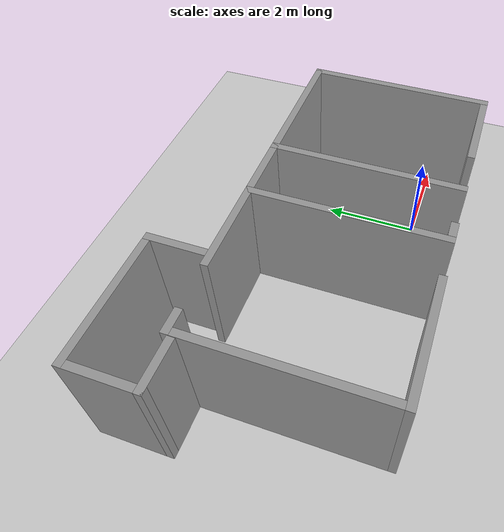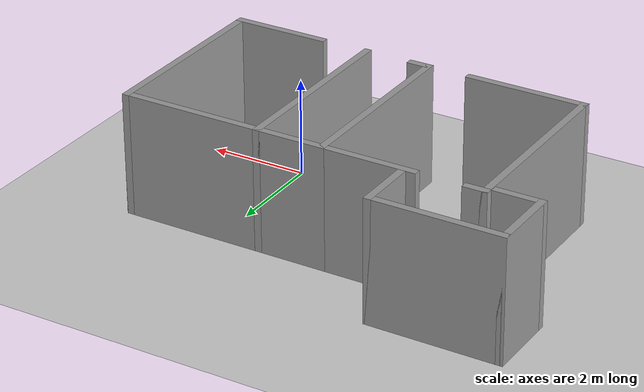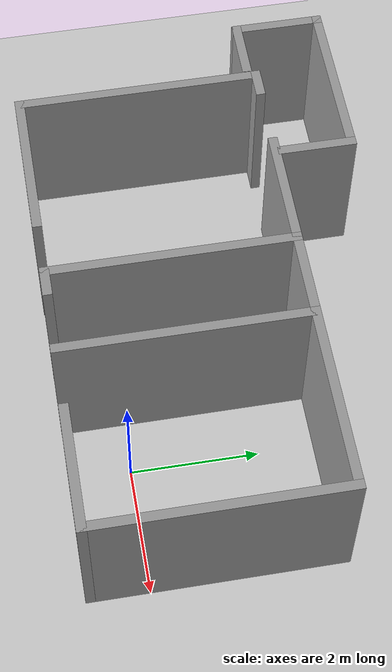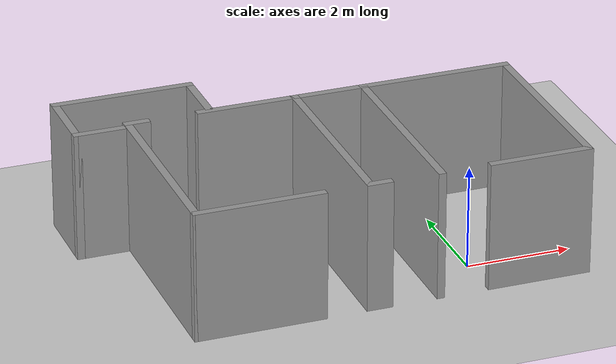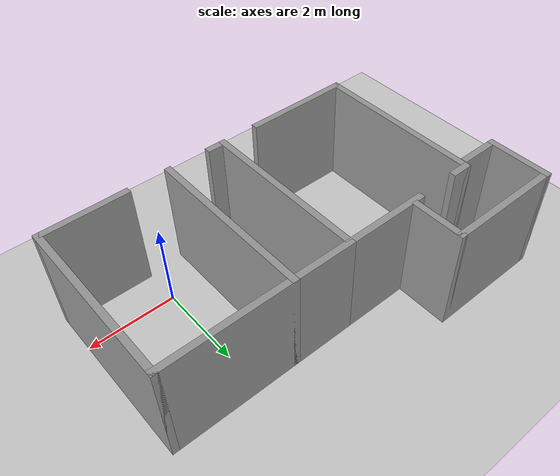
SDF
<sdf version="1.9">
 <world name="default">
  <light name="sun" type="directional">
   <pose>0 0 10 0 0 0</pose>
   <diffuse>0.800000012 0.800000012 0.800000012 1</diffuse>
   <specular>0.100000001 0.100000001 0.100000001 1</specular>
   <attenuation>
    <range>1000</range>
    <constant>0.90000000000000002</constant>
    <linear>0.01</linear>
    <quadratic>0.001</quadratic>
   </attenuation>
   <direction>-0.5 0.5 -1</direction>
   <spot><inner_angle>0</inner_angle><outer_angle>0</outer_angle><falloff>0</falloff></spot>
  </light>
  <model name="ground_plane">
   <static>true</static>
   <link name="link">
    <collision name="collision">
     <geometry><plane><normal>0 0 1</normal><size>100 100</size></plane></geometry>
     <surface><friction><ode><mu>100</mu><mu2>50</mu2></ode></friction></surface>
    </collision>
    <visual name="visual">
     <cast_shadows>false</cast_shadows>
     <geometry><plane><normal>0 0 1</normal><size>100 100</size></plane></geometry>
     <material>
      <script><uri>file://media/materials/scripts/gazebo.material</uri><name>Gazebo/Grey</name></script>
     </material>
    </visual>
   </link>
  </model>
  <gravity>0 0 -9.8000000000000007</gravity>
  <magnetic_field>6.0000000000000002e-06 2.3e-05 -4.1999999999999998e-05</magnetic_field>
  <atmosphere type="adiabatic"/>
  <physics name="default_physics" default="false" type="ode">
   <max_step_size>0.001</max_step_size>
   <real_time_factor>1</real_time_factor>
   <real_time_update_rate>1000</real_time_update_rate>
  </physics>
  <scene>
   <ambient>0.400000006 0.400000006 0.400000006 1</ambient>
   <background>0.699999988 0.699999988 0.699999988 1</background>
   <shadows>true</shadows>
  </scene>
  <spherical_coordinates>
   <surface_model>EARTH_WGS84</surface_model>
   <latitude_deg>0</latitude_deg>
   <longitude_deg>0</longitude_deg>
   <elevation>0</elevation>
   <heading_deg>0</heading_deg>
  </spherical_coordinates>
  <model name="cma_escritorio">
   <pose>-1.7968200000000001 1.02121 0 0 0 0</pose>
   <link name="Wall_11">
    <collision name="Wall_11_Collision">
     <geometry><box><size>2 0.14999999999999999 2.5</size></box></geometry>
     <pose>0 0 1.25 0 0 0</pose>
    </collision>
    <visual name="Wall_11_Visual">
     <pose>0 0 1.25 0 0 0</pose>
     <geometry><box><size>2 0.14999999999999999 2.5</size></box></geometry>
     <material>
      <script><uri>file://media/materials/scripts/gazebo.material</uri><name>Gazebo/Grey</name></script>
      <ambient>1 1 1 1</ambient>
     </material>
    </visual>
    <pose>-1.3999999999999999 1.9299999999999999 0 0 0 3.1415899999999999</pose>
   </link>
   <link name="Wall_2">
    <collision name="Wall_2_Collision">
     <geometry><box><size>4 0.14999999999999999 2.5</size></box></geometry>
     <pose>0 0 1.25 0 0 0</pose>
    </collision>
    <visual name="Wall_2_Visual">
     <pose>0 0 1.25 0 0 0</pose>
     <geometry><box><size>4 0.14999999999999999 2.5</size></box></geometry>
     <material>
      <script><uri>file://media/materials/scripts/gazebo.material</uri><name>Gazebo/Grey</name></script>
      <ambient>1 1 1 1</ambient>
     </material>
    </visual>
    <pose>0.875 0.0050000000000000001 0 0 0 1.5708</pose>
   </link>
   <link name="Wall_25">
    <collision name="Wall_25_Collision">
     <geometry><box><size>2.5 0.14999999999999999 2.5</size></box></geometry>
     <pose>0 0 1.25 0 0 0</pose>
    </collision>
    <visual name="Wall_25_Visual">
     <pose>0 0 1.25 0 0 0</pose>
     <geometry><box><size>2.5 0.14999999999999999 2.5</size></box></geometry>
     <material>
      <script><uri>file://media/materials/scripts/gazebo.material</uri><name>Gazebo/Grey</name></script>
      <ambient>1 1 1 1</ambient>
     </material>
    </visual>
    <pose>-2.5499999999999998 -1.9299999999999999 0 0 0 3.1415899999999999</pose>
   </link>
   <link name="Wall_26">
    <collision name="Wall_26_Collision">
     <geometry><box><size>4 0.14999999999999999 2.5</size></box></geometry>
     <pose>0 0 1.25 0 0 0</pose>
    </collision>
    <visual name="Wall_26_Visual">
     <pose>0 0 1.25 0 0 0</pose>
     <geometry><box><size>4 0.14999999999999999 2.5</size></box></geometry>
     <material>
      <script><uri>file://media/materials/scripts/gazebo.material</uri><name>Gazebo/Grey</name></script>
      <ambient>1 1 1 1</ambient>
     </material>
    </visual>
    <pose>-3.7250000000000001 -0.0050000000000000001 0 0 0 1.5708</pose>
   </link>
   <link name="Wall_27">
    <collision name="Wall_27_Collision">
     <geometry><box><size>0.5 0.14999999999999999 2.5</size></box></geometry>
     <pose>0 0 1.25 0 0 0</pose>
    </collision>
    <visual name="Wall_27_Visual">
     <pose>0 0 1.25 0 0 0</pose>
     <geometry><box><size>0.5 0.14999999999999999 2.5</size></box></geometry>
     <material>
      <script><uri>file://media/materials/scripts/gazebo.material</uri><name>Gazebo/Grey</name></script>
      <ambient>1 1 1 1</ambient>
     </material>
    </visual>
    <pose>-3.5499999999999998 1.9199999999999999 0 0 0 0</pose>
   </link>
   <link name="Wall_3">
    <collision name="Wall_3_Collision">
     <geometry><box><size>3 0.14999999999999999 2.5</size></box></geometry>
     <pose>0 0 1.25 0 0 0</pose>
    </collision>
    <visual name="Wall_3_Visual">
     <pose>0 0 1.25 0 0 0</pose>
     <geometry><box><size>3 0.14999999999999999 2.5</size></box></geometry>
     <material>
      <script><uri>file://media/materials/scripts/gazebo.material</uri><name>Gazebo/Grey</name></script>
      <ambient>1 1 1 1</ambient>
     </material>
    </visual>
    <pose>2.2999999999999998 1.9299999999999999 0 0 0 0</pose>
   </link>
   <link name="Wall_4">
    <collision name="Wall_4_Collision">
     <geometry><box><size>4 0.14999999999999999 2.5</size></box></geometry>
     <pose>0 0 1.25 0 0 0</pose>
    </collision>
    <visual name="Wall_4_Visual">
     <pose>0 0 1.25 0 0 0</pose>
     <geometry><box><size>4 0.14999999999999999 2.5</size></box></geometry>
     <material>
      <script><uri>file://media/materials/scripts/gazebo.material</uri><name>Gazebo/Grey</name></script>
      <ambient>1 1 1 1</ambient>
     </material>
    </visual>
    <pose>3.7250000000000001 0.0050000000000000001 0 0 0 -1.5708</pose>
   </link>
   <link name="Wall_5">
    <collision name="Wall_5_Collision">
     <geometry><box><size>2 0.14999999999999999 2.5</size></box></geometry>
     <pose>0 0 1.25 0 0 0</pose>
    </collision>
    <visual name="Wall_5_Visual">
     <pose>0 0 1.25 0 0 0</pose>
     <geometry><box><size>2 0.14999999999999999 2.5</size></box></geometry>
     <material>
      <script><uri>file://media/materials/scripts/gazebo.material</uri><name>Gazebo/Grey</name></script>
      <ambient>1 1 1 1</ambient>
     </material>
    </visual>
    <pose>2.7999999999999998 -1.9199999999999999 0 0 0 3.1415899999999999</pose>
   </link>
   <link name="Wall_7">
    <collision name="Wall_7_Collision">
     <geometry><box><size>1.5 0.14999999999999999 2.5</size></box></geometry>
     <pose>0 0 1.25 0 0 0</pose>
    </collision>
    <visual name="Wall_7_Visual">
     <pose>0 0 1.25 0 0 0</pose>
     <geometry><box><size>1.5 0.14999999999999999 2.5</size></box></geometry>
     <material>
      <script><uri>file://media/materials/scripts/gazebo.material</uri><name>Gazebo/Grey</name></script>
      <ambient>1 1 1 1</ambient>
     </material>
    </visual>
    <pose>0.20000000000000001 1.9299999999999999 0 0 0 3.1415899999999999</pose>
   </link>
   <link name="Wall_8">
    <collision name="Wall_8_Collision">
     <geometry><box><size>4 0.14999999999999999 2.5</size></box></geometry>
     <pose>0 0 1.25 0 0 0</pose>
    </collision>
    <visual name="Wall_8_Visual">
     <pose>0 0 1.25 0 0 0</pose>
     <geometry><box><size>4 0.14999999999999999 2.5</size></box></geometry>
     <material>
      <script><uri>file://media/materials/scripts/gazebo.material</uri><name>Gazebo/Grey</name></script>
      <ambient>1 1 1 1</ambient>
     </material>
    </visual>
    <pose>-0.47499999999999998 0.0050000000000000001 0 0 0 -1.5708</pose>
   </link>
   <link name="Wall_9">
    <collision name="Wall_9_Collision">
     <geometry><box><size>0.5 0.14999999999999999 2.5</size></box></geometry>
     <pose>0 0 1.25 0 0 0</pose>
    </collision>
    <visual name="Wall_9_Visual">
     <pose>0 0 1.25 0 0 0</pose>
     <geometry><box><size>0.5 0.14999999999999999 2.5</size></box></geometry>
     <material>
      <script><uri>file://media/materials/scripts/gazebo.material</uri><name>Gazebo/Grey</name></script>
      <ambient>1 1 1 1</ambient>
     </material>
    </visual>
    <pose>-0.29999999999999999 -1.9199999999999999 0 0 0 0</pose>
   </link>
   <static>true</static>
  </model>
  <model name="cma_banheiro">
   <pose>-5.2292800000000002 3.4870999999999999 0 0 0 0</pose>
   <link name="Wall_0">
    <collision name="Wall_0_Collision">
     <geometry><box><size>1 0.14999999999999999 2.5</size></box></geometry>
     <pose>0 0 1.25 0 0 0</pose>
    </collision>
    <visual name="Wall_0_Visual">
     <pose>0 0 1.25 0 0 0</pose>
     <geometry><box><size>1 0.14999999999999999 2.5</size></box></geometry>
     <material>
      <script><uri>file://media/materials/scripts/gazebo.material</uri><name>Gazebo/Grey</name></script>
      <ambient>1 1 1 1</ambient>
     </material>
    </visual>
    <pose>-0.875 -0.67500000000000004 0 0 0 3.1415899999999999</pose>
   </link>
   <link name="Wall_1">
    <collision name="Wall_1_Collision">
     <geometry><box><size>1.5 0.14999999999999999 2.5</size></box></geometry>
     <pose>0 0 1.25 0 0 0</pose>
    </collision>
    <visual name="Wall_1_Visual">
     <pose>0 0 1.25 0 0 0</pose>
     <geometry><box><size>1.5 0.14999999999999999 2.5</size></box></geometry>
     <material>
      <script><uri>file://media/materials/scripts/gazebo.material</uri><name>Gazebo/Grey</name></script>
      <ambient>1 1 1 1</ambient>
     </material>
    </visual>
    <pose>-1.3 0 0 0 0 1.5708</pose>
   </link>
   <link name="Wall_2">
    <collision name="Wall_2_Collision">
     <geometry><box><size>2.75 0.14999999999999999 2.5</size></box></geometry>
     <pose>0 0 1.25 0 0 0</pose>
    </collision>
    <visual name="Wall_2_Visual">
     <pose>0 0 1.25 0 0 0</pose>
     <geometry><box><size>2.75 0.14999999999999999 2.5</size></box></geometry>
     <material>
      <script><uri>file://media/materials/scripts/gazebo.material</uri><name>Gazebo/Grey</name></script>
      <ambient>1 1 1 1</ambient>
     </material>
    </visual>
    <pose>0 0.67500000000000004 0 0 0 0</pose>
   </link>
   <link name="Wall_4">
    <collision name="Wall_4_Collision">
     <geometry><box><size>1.25 0.14999999999999999 2.5</size></box></geometry>
     <pose>0 0 1.25 0 0 0</pose>
    </collision>
    <visual name="Wall_4_Visual">
     <pose>0 0 1.25 0 0 0</pose>
     <geometry><box><size>1.25 0.14999999999999999 2.5</size></box></geometry>
     <material>
      <script><uri>file://media/materials/scripts/gazebo.material</uri><name>Gazebo/Grey</name></script>
      <ambient>1 1 1 1</ambient>
     </material>
    </visual>
    <pose>1.3 0.125 0 0 0 -1.5708</pose>
   </link>
   <static>true</static>
  </model>
 </world>
</sdf>
